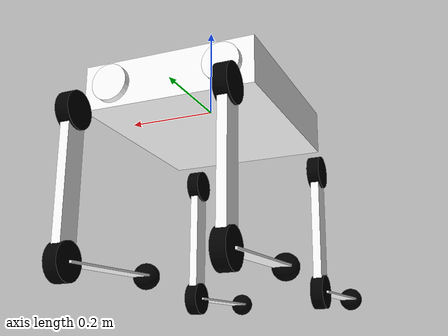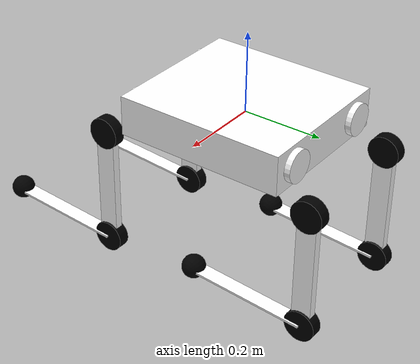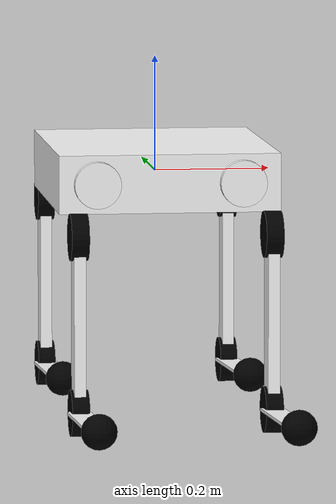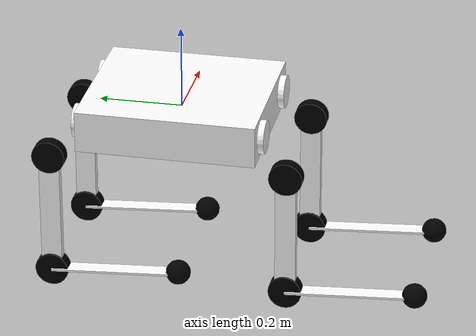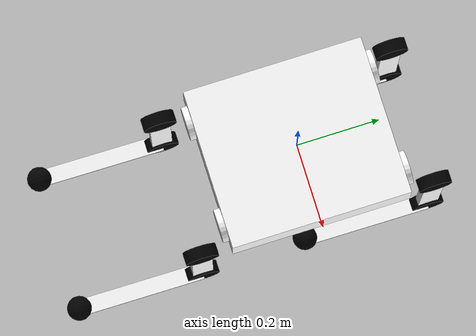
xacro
<?xml version="1.0"?>
<robot name="dogbot" xmlns:xacro="http://ros.org/wiki/xacro">

  <xacro:property name="bodyheight" value="0.1" />
  <xacro:property name="bodywidth" value="0.38" />
  <xacro:property name="bodylen" value="0.43" />
  <xacro:property name="legoffset" value="0.125" />

  <xacro:property name="drivediam" value="0.08" />

  <xacro:property name="upperleglen" value="0.30" />
  <xacro:property name="lowerleglen" value="0.31" />

  <xacro:property name="kp" value="1000000" />
  <xacro:property name="kd" value="1.0" />

  <xacro:property name="pi" value="3.1415" />

  <material name="blue">
    <color rgba="0 0 0.8 1"/>
  </material>

  <material name="black">
    <color rgba="0 0 0 1"/>
  </material>

  <material name="white">
    <color rgba="1 1 1 1"/>
  </material>

  <xacro:macro name="default_inertial" params="mass xSize ySize zSize">
    <inertial>
      <mass value="${mass}" />
      <!-- Approximate mass distribution with a box -->
      <inertia
        ixx="${(1.0 / 12.0) * mass * (pow(ySize, 2) + pow(zSize, 2))}"
        ixy="0"
        ixz="0.0"
        iyy="${(1.0 / 12.0) * mass * (pow(xSize, 2) + pow(zSize, 2))}"
        iyz="0.0"
        izz="${(1.0 / 12.0) * mass * (pow(xSize, 2) + pow(ySize, 2))}"
      />
    </inertial>
  </xacro:macro>

  <link name="base_link">
  </link>

  <link name="body">
    <visual>
      <geometry>
        <box size="${bodywidth} ${bodylen} ${bodyheight}"/>
      </geometry>
      <material name="white"/>
    </visual>
    <collision>
      <geometry>
        <box size="${bodywidth} ${bodylen} ${bodyheight}"/>
      </geometry>
    </collision>

    <xacro:default_inertial mass="6" xSize="${bodywidth}" ySize="${bodylen}" zSize="${bodyheight}" />

  </link>

  <joint name="base_joint" type="fixed">
    <axis xyz="0 0 0" rpy="0 0 0" />
    <parent link="base_link"/>
    <child link="body"/>
  </joint>

  <gazebo reference="body">
    <mu1 value="200.0"/>
    <mu2 value="100.0"/>
    <kp value="${kp}" />
    <kd value="${kd}" />
    <material>Gazebo/white</material>
  </gazebo>

  <xacro:macro name="leg" params="prefix suffix reflectx reflecty">
    <link name="${prefix}_${suffix}_hip">
      <visual>
        <origin xyz="0 0 0" rpy="${pi/2} 0 0" />
        <geometry>
          <cylinder radius="${drivediam/2}" length="0.03"/>
        </geometry>
        <material name="white"/>
      </visual>
      <collision>
        <origin xyz="0 0 0" rpy="${pi/2} 0 0" />
        <geometry>
          <cylinder radius="${drivediam/2}" length="0.03"/>
        </geometry>
      </collision>
      <!-- FIXME: check the location of center of mass. -->
      <xacro:default_inertial mass="2.5" xSize="0.25" ySize="0.12" zSize="0.22"/>
    </link>

    <joint name="${prefix}_${suffix}_roll_joint" type="revolute">
      <axis xyz="0 1 0" rpy="0 0 0" />
      <parent link="body"/>
      <child link="${prefix}_${suffix}_hip"/>
      <origin xyz="${legoffset*reflectx} ${bodylen * reflecty/2} 0" rpy="0 0 ${-pi*(1-reflecty)/2}"/>
      <limit
         lower ="${(-pi * (reflectx * reflecty +1)/2) + (pi * (reflectx * reflecty -1)/8) }"
         upper ="${(-pi * (reflectx * reflecty -1)/2) + (pi * (reflectx * reflecty +1)/8) }"
         effort="500" velocity="10.0" />
    </joint>

    <link name="${prefix}_${suffix}_upperleg">
      <visual>
        <origin xyz="0 0 0" rpy="${pi/2} 0 0" />
        <geometry>
          <cylinder radius="${drivediam/2}" length="0.03"/>
        </geometry>
        <material name="black"/>
      </visual>
      <collision>
        <origin xyz="0 0 0" rpy="${pi/2} 0 0" />
        <geometry>
          <cylinder radius="${drivediam/2}" length="0.03"/>
        </geometry>
      </collision>
      <visual>
        <origin xyz="${upperleglen * reflectx /2} 0 0" rpy="${pi/2} 0 0" />
        <geometry>
          <box size="${upperleglen} 0.05 0.02"/>
        </geometry>
        <material name="white"/>
      </visual>
      <collision>
        <origin xyz="${upperleglen * reflectx /2} 0 0" rpy="${pi/2} 0 0" />
        <geometry>
          <box size="${upperleglen} 0.05 0.02"/>
        </geometry>
      </collision>
      <xacro:default_inertial mass="0.5" xSize="0.08" ySize="0.03" zSize="0.38" />
    </link>

    <joint name="${prefix}_${suffix}_pitch_joint" type="revolute">
      <axis xyz="0 1 0" rpy="0 0 0" />
      <parent link="${prefix}_${suffix}_hip"/>
      <child link="${prefix}_${suffix}_upperleg"/>
      <!--  rpy="0  ${pi * reflectx/2.3} ${pi *reflectx *reflecty /2} -->
      <origin xyz="${0.04*reflectx*reflecty} 0.07 -0.080" rpy="0  ${pi * reflectx/2} ${pi *reflectx *reflecty /2}"/>
      <limit
        lower ="-${pi/2}"
        upper="${pi/2}"
        effort="1000"
        velocity="10.0"
        />
    </joint>

    <link name="${prefix}_${suffix}_lowerleg">
      <visual>
        <origin xyz="0 0 0" rpy="${pi/2} 0 0" />
        <geometry>
          <cylinder radius="${drivediam/2}" length="0.03"/>
        </geometry>
        <material name="black"/>
      </visual>
      <collision>
        <origin xyz="0 0 0" rpy="${pi/2} 0 0" />
        <geometry>
          <cylinder radius="${drivediam/2}" length="0.03"/>
        </geometry>
      </collision>
      <visual>
        <origin xyz="${lowerleglen * reflectx /2} 0 0" rpy="${pi/2} 0 0" />
        <geometry>
          <box size="${lowerleglen} 0.005 0.04"/>
        </geometry>
        <material name="white"/>
      </visual>
      <collision>
        <origin xyz="${lowerleglen * reflectx /2} 0 0" rpy="${pi/2} 0 0" />
        <geometry>
          <box size="${lowerleglen} 0.005 0.04"/>
        </geometry>
      </collision>
      <xacro:default_inertial mass="0.2" xSize="0.03" ySize="0.02" zSize="0.36" />
    </link>

    <gazebo reference="${prefix}_${suffix}_lowerleg">
      <mu1 value="2000.0"/>
      <mu2 value="1000.0"/>
      <kp value="${kp}" />
      <kd value="${kd}" />
      <material>Gazebo/Grey</material>
    </gazebo>

    <joint name="${prefix}_${suffix}_knee_joint" type="revolute">
      <axis xyz="0 -1 0" rpy="0 0 0" />
      <parent link="${prefix}_${suffix}_upperleg"/>
      <child link="${prefix}_${suffix}_lowerleg"/>
      <origin xyz="${upperleglen * reflectx} 0 0" rpy="0 0 0"/>
      <limit
         lower ="${reflectx *-1.63201375031 - 0.9232 }"
         upper ="${reflectx *-1.63201375031 + 0.9232 }"
         effort="1000" velocity="10.0"
       />
    </joint>

    <link name="${prefix}_${suffix}_foot">
      <visual>
        <origin xyz="0 0 0" rpy="${pi/2} 0 0" />
        <geometry>
          <!--cylinder radius="0.008" length="0.06"/-->
          <sphere radius = "0.03"/>
        </geometry>
        <material name="black"/>
      </visual>
      <collision>
        <origin xyz="0 0 0" rpy="${pi/2} 0 0" />
        <geometry>
          <!--cylinder radius="0.008" length="0.06"/-->
          <sphere radius = "0.03"/>
        </geometry>
      </collision>
      <xacro:default_inertial mass="0.1" xSize="0.05" ySize="0.05" zSize="0.05"/>
    </link>

    <joint name="${prefix}_${suffix}_foot_joint" type="fixed">
      <axis xyz="0 1 0" rpy="0 0 0" />
      <parent link="${prefix}_${suffix}_lowerleg"/>
      <child link="${prefix}_${suffix}_foot"/>
      <origin xyz="${lowerleglen * reflectx} 0 0" rpy="0 0 0"/>
    </joint>

    <gazebo reference="${prefix}_${suffix}_foot">
      <mu1 value="2000000000.0"/>
      <mu2 value="1000000000.0"/>
      <kp value="80000" />
      <kd value="1" />
      <material>Gazebo/Grey</material>
    </gazebo>

    <transmission name="${prefix}_${suffix}_roll_transmition" >
      <type>transmission_interface/SimpleTransmission</type>
      <joint name="${prefix}_${suffix}_roll_joint">
        <hardwareInterface>hardware_interface/EffortJointInterface</hardwareInterface>
      </joint>
      <actuator name="${prefix}_${suffix}_roll_motor" >
        <hardwareInterface>hardware_interface/EffortJointInterface</hardwareInterface>
        <mechanicalReduction>1</mechanicalReduction>
      </actuator>
    </transmission>

    <transmission name="${prefix}_${suffix}_pitch_transmition" >
      <type>transmission_interface/SimpleTransmission</type>
      <joint name="${prefix}_${suffix}_pitch_joint">
        <hardwareInterface>hardware_interface/EffortJointInterface</hardwareInterface>
      </joint>
      <actuator name="${prefix}_${suffix}_pitch_motor" >
        <hardwareInterface>hardware_interface/EffortJointInterface</hardwareInterface>
        <mechanicalReduction>1</mechanicalReduction>
      </actuator>
    </transmission>

    <transmission name="${prefix}_${suffix}_knee_transmition" >
      <type>transmission_interface/SimpleTransmission</type>
      <joint name="${prefix}_${suffix}_knee_joint">
        <hardwareInterface>hardware_interface/EffortJointInterface</hardwareInterface>
      </joint>
      <actuator name="${prefix}_${suffix}_knee_motor" >
        <hardwareInterface>hardware_interface/EffortJointInterface</hardwareInterface>
        <mechanicalReduction>1</mechanicalReduction>
      </actuator>
    </transmission>

  </xacro:macro>

  <xacro:leg prefix="front" suffix="right" reflectx="-1"  reflecty="-1"/>
  <xacro:leg prefix="front" suffix="left"  reflectx="1" reflecty="-1" />
  <xacro:leg prefix="back"  suffix="right" reflectx="-1"  reflecty="1"/>
  <xacro:leg prefix="back"  suffix="left"  reflectx="1" reflecty="1" />

  <gazebo>
    <plugin name="imu_plugin" filename="libhector_gazebo_ros_imu.so">
      <alwaysOn>true</alwaysOn>
      <bodyName>body</bodyName>
      <robotNamespace>dogbot</robotNamespace>
      <topicName>imu</topicName>
      <serviceName>imu_service</serviceName>
      <gaussianNoise>0.0</gaussianNoise>
      <updateRate>20.0</updateRate>
    </plugin>

    <plugin name="gps_plugin" filename="libhector_gazebo_ros_gps.so">
      <alwaysOn>true</alwaysOn>
      <bodyName>body</bodyName>
      <robotNamespace>dogbot</robotNamespace>
      <topicName>gps</topicName>
      <serviceName>imu_service</serviceName>
      <updateRate>100</updateRate>
      <referenceLatitude>51.5</referenceLatitude>
      <referenceLongitude>0.1278</referenceLongitude>
    </plugin>
  </gazebo>

  <!-- Gazebo plugin for ROS Control -->
  <gazebo>
    <plugin name="gazebo_ros_control" filename="libgazebo_ros_control.so">
      <robotNamespace>/dogbot</robotNamespace>
    </plugin>
  </gazebo>

</robot>
